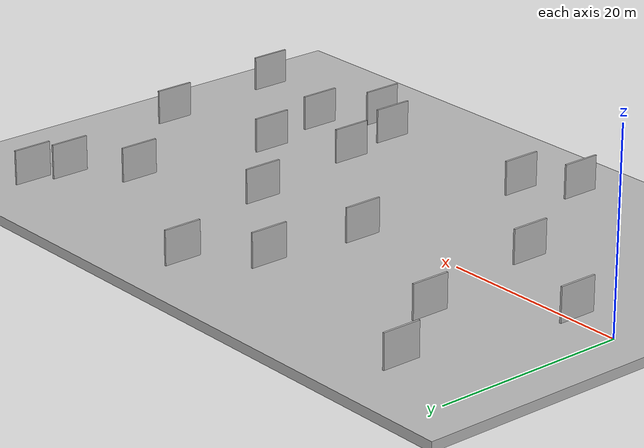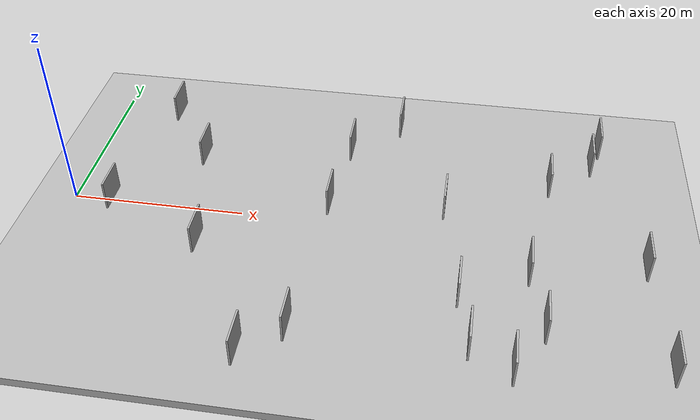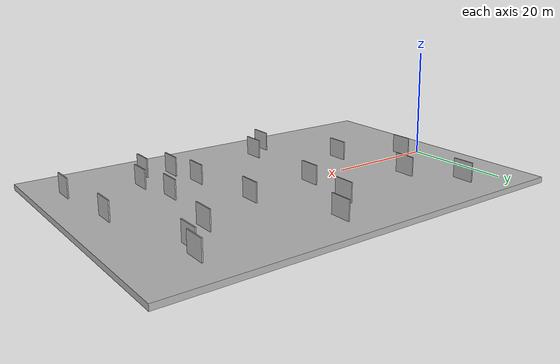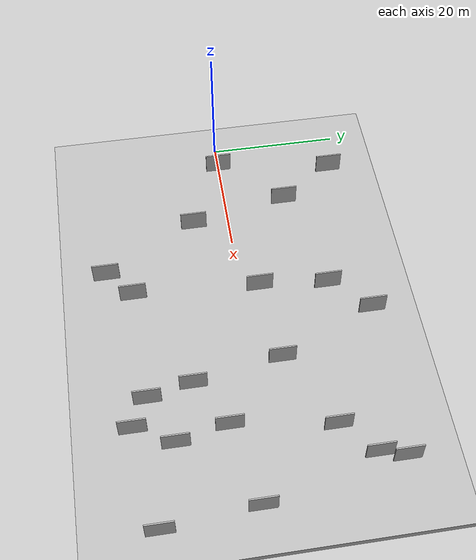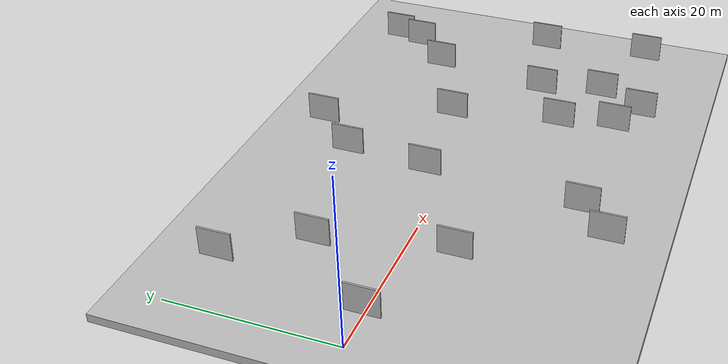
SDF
<?xml version="1.0" encoding="utf-8"?>

<sdf version="1.6">

   <world name="default">

      <gui fullscreen="0">

         <camera name="user_camera">

            <pose>-15 0 4.57585 0 0 0</pose>

            <view_controller>orbit</view_controller>

         </camera>

      </gui>

      <scene>

         <sky>

           <clouds>

             <speed>12</speed>

           </clouds>

         </sky>

         <ambient>0.4 0.4 0.4 1</ambient>

         <background>0.7 0.7 0.7 1</background>

         <shadows>1</shadows>

      </scene>

      <gravity>0 0 -9.8066</gravity>

      <magnetic_field>6e-06 2.3e-05 -4.2e-05</magnetic_field>

      <physics default="0" name="default_physics" type="ode">

         <ode>

            <solver>

               <type>quick</type>

               <iters>10</iters>

               <sor>1.0</sor>

               <use_dynamic_moi_rescaling>0</use_dynamic_moi_rescaling>

            </solver>

            <constraints>

               <cfm>0</cfm>

               <erp>0.2</erp>

               <contact_max_correcting_vel>100</contact_max_correcting_vel>

               <contact_surface_layer>0.001</contact_surface_layer>

            </constraints>

         </ode>

         <max_step_size>0.004</max_step_size>

         <real_time_factor>1</real_time_factor>

         <real_time_update_rate>250</real_time_update_rate>

      </physics>

      <light name="sun" type="directional">

         <cast_shadows>1</cast_shadows>

         <pose>0 0 10 0 0 0</pose>

         <diffuse>0.8 0.8 0.8 1</diffuse>

         <specular>0.2 0.2 0.2 1</specular>

         <attenuation>

            <range>1000</range>

            <constant>0.9</constant>

            <linear>0.01</linear>

            <quadratic>0.001</quadratic>

         </attenuation>

         <direction>-0.5 0.1 -0.9</direction>

      </light>

      <include>

         <name>ground_plane_1</name>

         <uri>model://HANNAS_ground_plane</uri>

         <pose>0 0 0  0 0 0</pose>

      </include>

      <include>

         <name>ground_plane_2</name>

         <uri>model://HANNAS_ground_plane</uri>

         <pose>100 0 0  0 0 0</pose>

      </include>

      <model name="HANNAS_wall_1">

         <static>1</static>

         <pose frame="">7.4621 17.9205 0.0 0.000000 0.000000 1.570796</pose>

         <link name="link">

            <pose frame="">0 0 2.00 0 0 0</pose>

            <collision name="collision">

               <geometry>

                  <box>

                     <size>4.00 0.2 4.00</size>

                  </box>

               </geometry>

               <max_contacts>10</max_contacts>

               <surface>

                  <contact>

                     <ode/>

                  </contact>

                  <bounce/>

                  <friction>

                     <torsional>

                        <ode/>

                     </torsional>

                     <ode/>

                  </friction>

               </surface>

            </collision>

            <visual name="visual">

               <cast_shadows>0</cast_shadows>

               <geometry>

                  <box>

                     <size>4.00 0.2 4.00</size>

                  </box>

               </geometry>

               <material>

                  <script>

                     <uri>model://HANNAS_wall/materials/scripts</uri>

                     <uri>model://HANNAS_wall/materials/textures</uri>

                     <name>vrc/HANNAS_wall</name>

                  </script>

               </material>

            </visual>

            <self_collide>0</self_collide>

            <enable_wind>0</enable_wind>

            <kinematic>0</kinematic>

         </link>

      </model>

      <model name="HANNAS_wall_2">

         <static>1</static>

         <pose frame="">46.7959 -15.8701 0.0 0.000000 0.000000 1.570796</pose>

         <link name="link">

            <pose frame="">0 0 2.00 0 0 0</pose>

            <collision name="collision">

               <geometry>

                  <box>

                     <size>4.00 0.2 4.00</size>

                  </box>

               </geometry>

               <max_contacts>10</max_contacts>

               <surface>

                  <contact>

                     <ode/>

                  </contact>

                  <bounce/>

                  <friction>

                     <torsional>

                        <ode/>

                     </torsional>

                     <ode/>

                  </friction>

               </surface>

            </collision>

            <visual name="visual">

               <cast_shadows>0</cast_shadows>

               <geometry>

                  <box>

                     <size>4.00 0.2 4.00</size>

                  </box>

               </geometry>

               <material>

                  <script>

                     <uri>model://HANNAS_wall/materials/scripts</uri>

                     <uri>model://HANNAS_wall/materials/textures</uri>

                     <name>vrc/HANNAS_wall</name>

                  </script>

               </material>

            </visual>

            <self_collide>0</self_collide>

            <enable_wind>0</enable_wind>

            <kinematic>0</kinematic>

         </link>

      </model>

      <model name="HANNAS_wall_3">

         <static>1</static>

         <pose frame="">29.8179 2.8084 0.0 0.000000 0.000000 1.570796</pose>

         <link name="link">

            <pose frame="">0 0 2.00 0 0 0</pose>

            <collision name="collision">

               <geometry>

                  <box>

                     <size>4.00 0.2 4.00</size>

                  </box>

               </geometry>

               <max_contacts>10</max_contacts>

               <surface>

                  <contact>

                     <ode/>

                  </contact>

                  <bounce/>

                  <friction>

                     <torsional>

                        <ode/>

                     </torsional>

                     <ode/>

                  </friction>

               </surface>

            </collision>

            <visual name="visual">

               <cast_shadows>0</cast_shadows>

               <geometry>

                  <box>

                     <size>4.00 0.2 4.00</size>

                  </box>

               </geometry>

               <material>

                  <script>

                     <uri>model://HANNAS_wall/materials/scripts</uri>

                     <uri>model://HANNAS_wall/materials/textures</uri>

                     <name>vrc/HANNAS_wall</name>

                  </script>

               </material>

            </visual>

            <self_collide>0</self_collide>

            <enable_wind>0</enable_wind>

            <kinematic>0</kinematic>

         </link>

      </model>

      <model name="HANNAS_wall_4">

         <static>1</static>

         <pose frame="">45.3434 -9.2093 0.0 0.000000 0.000000 1.570796</pose>

         <link name="link">

            <pose frame="">0 0 2.00 0 0 0</pose>

            <collision name="collision">

               <geometry>

                  <box>

                     <size>4.00 0.2 4.00</size>

                  </box>

               </geometry>

               <max_contacts>10</max_contacts>

               <surface>

                  <contact>

                     <ode/>

                  </contact>

                  <bounce/>

                  <friction>

                     <torsional>

                        <ode/>

                     </torsional>

                     <ode/>

                  </friction>

               </surface>

            </collision>

            <visual name="visual">

               <cast_shadows>0</cast_shadows>

               <geometry>

                  <box>

                     <size>4.00 0.2 4.00</size>

                  </box>

               </geometry>

               <material>

                  <script>

                     <uri>model://HANNAS_wall/materials/scripts</uri>

                     <uri>model://HANNAS_wall/materials/textures</uri>

                     <name>vrc/HANNAS_wall</name>

                  </script>

               </material>

            </visual>

            <self_collide>0</self_collide>

            <enable_wind>0</enable_wind>

            <kinematic>0</kinematic>

         </link>

      </model>

      <model name="HANNAS_wall_5">

         <static>1</static>

         <pose frame="">52.5863 -5.0500 0.0 0.000000 0.000000 1.570796</pose>

         <link name="link">

            <pose frame="">0 0 2.00 0 0 0</pose>

            <collision name="collision">

               <geometry>

                  <box>

                     <size>4.00 0.2 4.00</size>

                  </box>

               </geometry>

               <max_contacts>10</max_contacts>

               <surface>

                  <contact>

                     <ode/>

                  </contact>

                  <bounce/>

                  <friction>

                     <torsional>

                        <ode/>

                     </torsional>

                     <ode/>

                  </friction>

               </surface>

            </collision>

            <visual name="visual">

               <cast_shadows>0</cast_shadows>

               <geometry>

                  <box>

                     <size>4.00 0.2 4.00</size>

                  </box>

               </geometry>

               <material>

                  <script>

                     <uri>model://HANNAS_wall/materials/scripts</uri>

                     <uri>model://HANNAS_wall/materials/textures</uri>

                     <name>vrc/HANNAS_wall</name>

                  </script>

               </material>

            </visual>

            <self_collide>0</self_collide>

            <enable_wind>0</enable_wind>

            <kinematic>0</kinematic>

         </link>

      </model>

      <model name="HANNAS_wall_6">

         <static>1</static>

         <pose frame="">54.7894 9.7094 0.0 0.000000 0.000000 1.570796</pose>

         <link name="link">

            <pose frame="">0 0 2.00 0 0 0</pose>

            <collision name="collision">

               <geometry>

                  <box>

                     <size>4.00 0.2 4.00</size>

                  </box>

               </geometry>

               <max_contacts>10</max_contacts>

               <surface>

                  <contact>

                     <ode/>

                  </contact>

                  <bounce/>

                  <friction>

                     <torsional>

                        <ode/>

                     </torsional>

                     <ode/>

                  </friction>

               </surface>

            </collision>

            <visual name="visual">

               <cast_shadows>0</cast_shadows>

               <geometry>

                  <box>

                     <size>4.00 0.2 4.00</size>

                  </box>

               </geometry>

               <material>

                  <script>

                     <uri>model://HANNAS_wall/materials/scripts</uri>

                     <uri>model://HANNAS_wall/materials/textures</uri>

                     <name>vrc/HANNAS_wall</name>

                  </script>

               </material>

            </visual>

            <self_collide>0</self_collide>

            <enable_wind>0</enable_wind>

            <kinematic>0</kinematic>

         </link>

      </model>

      <model name="HANNAS_wall_7">

         <static>1</static>

         <pose frame="">66.2464 -16.0879 0.0 0.000000 0.000000 1.570796</pose>

         <link name="link">

            <pose frame="">0 0 2.00 0 0 0</pose>

            <collision name="collision">

               <geometry>

                  <box>

                     <size>4.00 0.2 4.00</size>

                  </box>

               </geometry>

               <max_contacts>10</max_contacts>

               <surface>

                  <contact>

                     <ode/>

                  </contact>

                  <bounce/>

                  <friction>

                     <torsional>

                        <ode/>

                     </torsional>

                     <ode/>

                  </friction>

               </surface>

            </collision>

            <visual name="visual">

               <cast_shadows>0</cast_shadows>

               <geometry>

                  <box>

                     <size>4.00 0.2 4.00</size>

                  </box>

               </geometry>

               <material>

                  <script>

                     <uri>model://HANNAS_wall/materials/scripts</uri>

                     <uri>model://HANNAS_wall/materials/textures</uri>

                     <name>vrc/HANNAS_wall</name>

                  </script>

               </material>

            </visual>

            <self_collide>0</self_collide>

            <enable_wind>0</enable_wind>

            <kinematic>0</kinematic>

         </link>

      </model>

      <model name="HANNAS_wall_8">

         <static>1</static>

         <pose frame="">24.3966 -19.9756 0.0 0.000000 0.000000 1.570796</pose>

         <link name="link">

            <pose frame="">0 0 2.00 0 0 0</pose>

            <collision name="collision">

               <geometry>

                  <box>

                     <size>4.00 0.2 4.00</size>

                  </box>

               </geometry>

               <max_contacts>10</max_contacts>

               <surface>

                  <contact>

                     <ode/>

                  </contact>

                  <bounce/>

                  <friction>

                     <torsional>

                        <ode/>

                     </torsional>

                     <ode/>

                  </friction>

               </surface>

            </collision>

            <visual name="visual">

               <cast_shadows>0</cast_shadows>

               <geometry>

                  <box>

                     <size>4.00 0.2 4.00</size>

                  </box>

               </geometry>

               <material>

                  <script>

                     <uri>model://HANNAS_wall/materials/scripts</uri>

                     <uri>model://HANNAS_wall/materials/textures</uri>

                     <name>vrc/HANNAS_wall</name>

                  </script>

               </material>

            </visual>

            <self_collide>0</self_collide>

            <enable_wind>0</enable_wind>

            <kinematic>0</kinematic>

         </link>

      </model>

      <model name="HANNAS_wall_9">

         <static>1</static>

         <pose frame="">36.3613 18.7348 0.0 0.000000 0.000000 1.570796</pose>

         <link name="link">

            <pose frame="">0 0 2.00 0 0 0</pose>

            <collision name="collision">

               <geometry>

                  <box>

                     <size>4.00 0.2 4.00</size>

                  </box>

               </geometry>

               <max_contacts>10</max_contacts>

               <surface>

                  <contact>

                     <ode/>

                  </contact>

                  <bounce/>

                  <friction>

                     <torsional>

                        <ode/>

                     </torsional>

                     <ode/>

                  </friction>

               </surface>

            </collision>

            <visual name="visual">

               <cast_shadows>0</cast_shadows>

               <geometry>

                  <box>

                     <size>4.00 0.2 4.00</size>

                  </box>

               </geometry>

               <material>

                  <script>

                     <uri>model://HANNAS_wall/materials/scripts</uri>

                     <uri>model://HANNAS_wall/materials/textures</uri>

                     <name>vrc/HANNAS_wall</name>

                  </script>

               </material>

            </visual>

            <self_collide>0</self_collide>

            <enable_wind>0</enable_wind>

            <kinematic>0</kinematic>

         </link>

      </model>

      <model name="HANNAS_wall_10">

         <static>1</static>

         <pose frame="">4.6107 -0.0028 0.0 0.000000 0.000000 1.570796</pose>

         <link name="link">

            <pose frame="">0 0 2.00 0 0 0</pose>

            <collision name="collision">

               <geometry>

                  <box>

                     <size>4.00 0.2 4.00</size>

                  </box>

               </geometry>

               <max_contacts>10</max_contacts>

               <surface>

                  <contact>

                     <ode/>

                  </contact>

                  <bounce/>

                  <friction>

                     <torsional>

                        <ode/>

                     </torsional>

                     <ode/>

                  </friction>

               </surface>

            </collision>

            <visual name="visual">

               <cast_shadows>0</cast_shadows>

               <geometry>

                  <box>

                     <size>4.00 0.2 4.00</size>

                  </box>

               </geometry>

               <material>

                  <script>

                     <uri>model://HANNAS_wall/materials/scripts</uri>

                     <uri>model://HANNAS_wall/materials/textures</uri>

                     <name>vrc/HANNAS_wall</name>

                  </script>

               </material>

            </visual>

            <self_collide>0</self_collide>

            <enable_wind>0</enable_wind>

            <kinematic>0</kinematic>

         </link>

      </model>

      <model name="HANNAS_wall_11">

         <static>1</static>

         <pose frame="">30.8883 13.0872 0.0 0.000000 0.000000 1.570796</pose>

         <link name="link">

            <pose frame="">0 0 2.00 0 0 0</pose>

            <collision name="collision">

               <geometry>

                  <box>

                     <size>4.00 0.2 4.00</size>

                  </box>

               </geometry>

               <max_contacts>10</max_contacts>

               <surface>

                  <contact>

                     <ode/>

                  </contact>

                  <bounce/>

                  <friction>

                     <torsional>

                        <ode/>

                     </torsional>

                     <ode/>

                  </friction>

               </surface>

            </collision>

            <visual name="visual">

               <cast_shadows>0</cast_shadows>

               <geometry>

                  <box>

                     <size>4.00 0.2 4.00</size>

                  </box>

               </geometry>

               <material>

                  <script>

                     <uri>model://HANNAS_wall/materials/scripts</uri>

                     <uri>model://HANNAS_wall/materials/textures</uri>

                     <name>vrc/HANNAS_wall</name>

                  </script>

               </material>

            </visual>

            <self_collide>0</self_collide>

            <enable_wind>0</enable_wind>

            <kinematic>0</kinematic>

         </link>

      </model>

      <model name="HANNAS_wall_12">

         <static>1</static>

         <pose frame="">51.1539 -18.3211 0.0 0.000000 0.000000 1.570796</pose>

         <link name="link">

            <pose frame="">0 0 2.00 0 0 0</pose>

            <collision name="collision">

               <geometry>

                  <box>

                     <size>4.00 0.2 4.00</size>

                  </box>

               </geometry>

               <max_contacts>10</max_contacts>

               <surface>

                  <contact>

                     <ode/>

                  </contact>

                  <bounce/>

                  <friction>

                     <torsional>

                        <ode/>

                     </torsional>

                     <ode/>

                  </friction>

               </surface>

            </collision>

            <visual name="visual">

               <cast_shadows>0</cast_shadows>

               <geometry>

                  <box>

                     <size>4.00 0.2 4.00</size>

                  </box>

               </geometry>

               <material>

                  <script>

                     <uri>model://HANNAS_wall/materials/scripts</uri>

                     <uri>model://HANNAS_wall/materials/textures</uri>

                     <name>vrc/HANNAS_wall</name>

                  </script>

               </material>

            </visual>

            <self_collide>0</self_collide>

            <enable_wind>0</enable_wind>

            <kinematic>0</kinematic>

         </link>

      </model>

      <model name="HANNAS_wall_13">

         <static>1</static>

         <pose frame="">54.2261 -12.6789 0.0 0.000000 0.000000 1.570796</pose>

         <link name="link">

            <pose frame="">0 0 2.00 0 0 0</pose>

            <collision name="collision">

               <geometry>

                  <box>

                     <size>4.00 0.2 4.00</size>

                  </box>

               </geometry>

               <max_contacts>10</max_contacts>

               <surface>

                  <contact>

                     <ode/>

                  </contact>

                  <bounce/>

                  <friction>

                     <torsional>

                        <ode/>

                     </torsional>

                     <ode/>

                  </friction>

               </surface>

            </collision>

            <visual name="visual">

               <cast_shadows>0</cast_shadows>

               <geometry>

                  <box>

                     <size>4.00 0.2 4.00</size>

                  </box>

               </geometry>

               <material>

                  <script>

                     <uri>model://HANNAS_wall/materials/scripts</uri>

                     <uri>model://HANNAS_wall/materials/textures</uri>

                     <name>vrc/HANNAS_wall</name>

                  </script>

               </material>

            </visual>

            <self_collide>0</self_collide>

            <enable_wind>0</enable_wind>

            <kinematic>0</kinematic>

         </link>

      </model>

      <model name="HANNAS_wall_14">

         <static>1</static>

         <pose frame="">42.9359 3.9813 0.0 0.000000 0.000000 1.570796</pose>

         <link name="link">

            <pose frame="">0 0 2.00 0 0 0</pose>

            <collision name="collision">

               <geometry>

                  <box>

                     <size>4.00 0.2 4.00</size>

                  </box>

               </geometry>

               <max_contacts>10</max_contacts>

               <surface>

                  <contact>

                     <ode/>

                  </contact>

                  <bounce/>

                  <friction>

                     <torsional>

                        <ode/>

                     </torsional>

                     <ode/>

                  </friction>

               </surface>

            </collision>

            <visual name="visual">

               <cast_shadows>0</cast_shadows>

               <geometry>

                  <box>

                     <size>4.00 0.2 4.00</size>

                  </box>

               </geometry>

               <material>

                  <script>

                     <uri>model://HANNAS_wall/materials/scripts</uri>

                     <uri>model://HANNAS_wall/materials/textures</uri>

                     <name>vrc/HANNAS_wall</name>

                  </script>

               </material>

            </visual>

            <self_collide>0</self_collide>

            <enable_wind>0</enable_wind>

            <kinematic>0</kinematic>

         </link>

      </model>

      <model name="HANNAS_wall_15">

         <static>1</static>

         <pose frame="">59.7703 14.3751 0.0 0.000000 0.000000 1.570796</pose>

         <link name="link">

            <pose frame="">0 0 2.00 0 0 0</pose>

            <collision name="collision">

               <geometry>

                  <box>

                     <size>4.00 0.2 4.00</size>

                  </box>

               </geometry>

               <max_contacts>10</max_contacts>

               <surface>

                  <contact>

                     <ode/>

                  </contact>

                  <bounce/>

                  <friction>

                     <torsional>

                        <ode/>

                     </torsional>

                     <ode/>

                  </friction>

               </surface>

            </collision>

            <visual name="visual">

               <cast_shadows>0</cast_shadows>

               <geometry>

                  <box>

                     <size>4.00 0.2 4.00</size>

                  </box>

               </geometry>

               <material>

                  <script>

                     <uri>model://HANNAS_wall/materials/scripts</uri>

                     <uri>model://HANNAS_wall/materials/textures</uri>

                     <name>vrc/HANNAS_wall</name>

                  </script>

               </material>

            </visual>

            <self_collide>0</self_collide>

            <enable_wind>0</enable_wind>

            <kinematic>0</kinematic>

         </link>

      </model>

      <model name="HANNAS_wall_16">

         <static>1</static>

         <pose frame="">13.2607 9.4195 0.0 0.000000 0.000000 1.570796</pose>

         <link name="link">

            <pose frame="">0 0 2.00 0 0 0</pose>

            <collision name="collision">

               <geometry>

                  <box>

                     <size>4.00 0.2 4.00</size>

                  </box>

               </geometry>

               <max_contacts>10</max_contacts>

               <surface>

                  <contact>

                     <ode/>

                  </contact>

                  <bounce/>

                  <friction>

                     <torsional>

                        <ode/>

                     </torsional>

                     <ode/>

                  </friction>

               </surface>

            </collision>

            <visual name="visual">

               <cast_shadows>0</cast_shadows>

               <geometry>

                  <box>

                     <size>4.00 0.2 4.00</size>

                  </box>

               </geometry>

               <material>

                  <script>

                     <uri>model://HANNAS_wall/materials/scripts</uri>

                     <uri>model://HANNAS_wall/materials/textures</uri>

                     <name>vrc/HANNAS_wall</name>

                  </script>

               </material>

            </visual>

            <self_collide>0</self_collide>

            <enable_wind>0</enable_wind>

            <kinematic>0</kinematic>

         </link>

      </model>

      <model name="HANNAS_wall_17">

         <static>1</static>

         <pose frame="">60.8624 17.9759 0.0 0.000000 0.000000 1.570796</pose>

         <link name="link">

            <pose frame="">0 0 2.00 0 0 0</pose>

            <collision name="collision">

               <geometry>

                  <box>

                     <size>4.00 0.2 4.00</size>

                  </box>

               </geometry>

               <max_contacts>10</max_contacts>

               <surface>

                  <contact>

                     <ode/>

                  </contact>

                  <bounce/>

                  <friction>

                     <torsional>

                        <ode/>

                     </torsional>

                     <ode/>

                  </friction>

               </surface>

            </collision>

            <visual name="visual">

               <cast_shadows>0</cast_shadows>

               <geometry>

                  <box>

                     <size>4.00 0.2 4.00</size>

                  </box>

               </geometry>

               <material>

                  <script>

                     <uri>model://HANNAS_wall/materials/scripts</uri>

                     <uri>model://HANNAS_wall/materials/textures</uri>

                     <name>vrc/HANNAS_wall</name>

                  </script>

               </material>

            </visual>

            <self_collide>0</self_collide>

            <enable_wind>0</enable_wind>

            <kinematic>0</kinematic>

         </link>

      </model>

      <model name="HANNAS_wall_18">

         <static>1</static>

         <pose frame="">28.6768 -16.2611 0.0 0.000000 0.000000 1.570796</pose>

         <link name="link">

            <pose frame="">0 0 2.00 0 0 0</pose>

            <collision name="collision">

               <geometry>

                  <box>

                     <size>4.00 0.2 4.00</size>

                  </box>

               </geometry>

               <max_contacts>10</max_contacts>

               <surface>

                  <contact>

                     <ode/>

                  </contact>

                  <bounce/>

                  <friction>

                     <torsional>

                        <ode/>

                     </torsional>

                     <ode/>

                  </friction>

               </surface>

            </collision>

            <visual name="visual">

               <cast_shadows>0</cast_shadows>

               <geometry>

                  <box>

                     <size>4.00 0.2 4.00</size>

                  </box>

               </geometry>

               <material>

                  <script>

                     <uri>model://HANNAS_wall/materials/scripts</uri>

                     <uri>model://HANNAS_wall/materials/textures</uri>

                     <name>vrc/HANNAS_wall</name>

                  </script>

               </material>

            </visual>

            <self_collide>0</self_collide>

            <enable_wind>0</enable_wind>

            <kinematic>0</kinematic>

         </link>

      </model>

      <model name="HANNAS_wall_19">

         <static>1</static>

         <pose frame="">16.3306 -5.5650 0.0 0.000000 0.000000 1.570796</pose>

         <link name="link">

            <pose frame="">0 0 2.00 0 0 0</pose>

            <collision name="collision">

               <geometry>

                  <box>

                     <size>4.00 0.2 4.00</size>

                  </box>

               </geometry>

               <max_contacts>10</max_contacts>

               <surface>

                  <contact>

                     <ode/>

                  </contact>

                  <bounce/>

                  <friction>

                     <torsional>

                        <ode/>

                     </torsional>

                     <ode/>

                  </friction>

               </surface>

            </collision>

            <visual name="visual">

               <cast_shadows>0</cast_shadows>

               <geometry>

                  <box>

                     <size>4.00 0.2 4.00</size>

                  </box>

               </geometry>

               <material>

                  <script>

                     <uri>model://HANNAS_wall/materials/scripts</uri>

                     <uri>model://HANNAS_wall/materials/textures</uri>

                     <name>vrc/HANNAS_wall</name>

                  </script>

               </material>

            </visual>

            <self_collide>0</self_collide>

            <enable_wind>0</enable_wind>

            <kinematic>0</kinematic>

         </link>

      </model>

      <model name="HANNAS_wall_20">

         <static>1</static>

         <pose frame="">64.9175 -2.4371 0.0 0.000000 0.000000 1.570796</pose>

         <link name="link">

            <pose frame="">0 0 2.00 0 0 0</pose>

            <collision name="collision">

               <geometry>

                  <box>

                     <size>4.00 0.2 4.00</size>

                  </box>

               </geometry>

               <max_contacts>10</max_contacts>

               <surface>

                  <contact>

                     <ode/>

                  </contact>

                  <bounce/>

                  <friction>

                     <torsional>

                        <ode/>

                     </torsional>

                     <ode/>

                  </friction>

               </surface>

            </collision>

            <visual name="visual">

               <cast_shadows>0</cast_shadows>

               <geometry>

                  <box>

                     <size>4.00 0.2 4.00</size>

                  </box>

               </geometry>

               <material>

                  <script>

                     <uri>model://HANNAS_wall/materials/scripts</uri>

                     <uri>model://HANNAS_wall/materials/textures</uri>

                     <name>vrc/HANNAS_wall</name>

                  </script>

               </material>

            </visual>

            <self_collide>0</self_collide>

            <enable_wind>0</enable_wind>

            <kinematic>0</kinematic>

         </link>

      </model>

   </world>

</sdf>

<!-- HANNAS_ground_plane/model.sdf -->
<sdf version="1.4">
<model name="HANNAS_ground_plane">
  <static>true</static>
    <link name="link">
      <collision name="collision">
        <geometry>
          <plane>
            <normal>0 0 1</normal>
            <size>1000 1000</size>
          </plane>
        </geometry>
        <surface>
          <friction>
            <ode>
              <mu>100</mu>
              <mu2>50</mu2>
            </ode>
          </friction>
        </surface>
      </collision>
      <visual name="visual">
        <cast_shadows>false</cast_shadows>
        <geometry>
          <plane>
            <normal>0 0 1</normal>
            <size>1000 1000</size>
          </plane>
        </geometry>
        <material>
          <script>
            <uri>model://HANNAS_ground_plane/materials/scripts/HANNAS_ground_plane.material</uri>
	    <uri>model://HANNAS_ground_plane/materials/textures</uri>
            <name>HANNASGroundPlane/Image</name>
          </script>
        </material>
      </visual>
    </link>
  </model>
</sdf>
